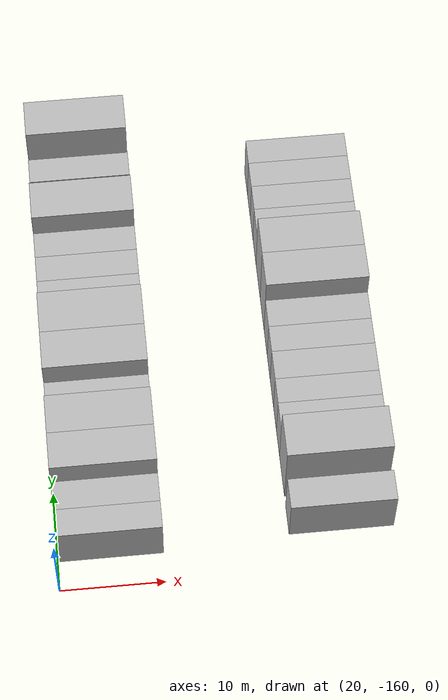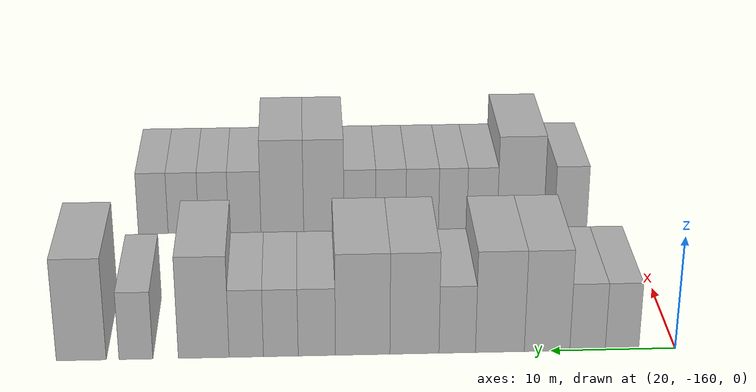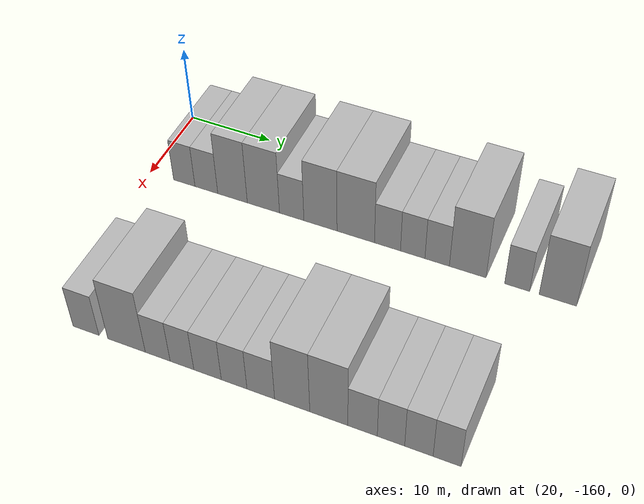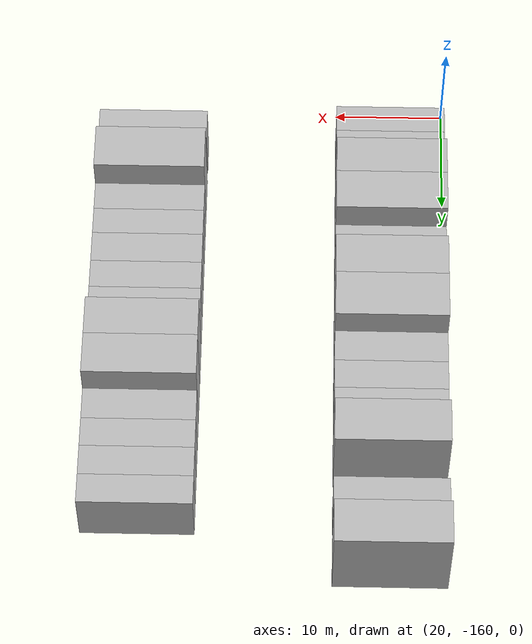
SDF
<sdf version="1.6">
 <world name="default">
  <model name="building_14">
   <static>1</static>
   <pose>25.0000 -155.7029 0 0.000000 0.000000 0.000000</pose>
   <link name="link">
    <pose>0 0 3.00 0 0 0</pose>
    <collision name="collision"><geometry><box><size>10.0000 2.6917 6.0000</size></box></geometry></collision>
    <visual name="visual">
     <cast_shadows>0</cast_shadows>
     <geometry><box><size>10.0000 2.6917 6.0000</size></box></geometry>
     <material>
      <script>
       <uri>model://HANNAS_wall/materials/scripts</uri>
       <uri>model://HANNAS_wall/materials/textures</uri>
       <name>vrc/HANNAS_wall</name>
      </script>
     </material>
    </visual>
   </link>
  </model>
  <model name="building_15">
   <static>1</static>
   <pose>25.0000 -152.9369 0 0.000000 0.000000 0.000000</pose>
   <link name="link">
    <pose>0 0 3.00 0 0 0</pose>
    <collision name="collision"><geometry><box><size>10.0000 2.8404 6.0000</size></box></geometry></collision>
    <visual name="visual">
     <cast_shadows>0</cast_shadows>
     <geometry><box><size>10.0000 2.8404 6.0000</size></box></geometry>
     <material>
      <script>
       <uri>model://HANNAS_wall/materials/scripts</uri>
       <uri>model://HANNAS_wall/materials/textures</uri>
       <name>vrc/HANNAS_wall</name>
      </script>
     </material>
    </visual>
   </link>
  </model>
  <model name="building_16">
   <static>1</static>
   <pose>25.0000 -149.6994 0 0.000000 0.000000 0.000000</pose>
   <link name="link">
    <pose>0 0 4.50 0 0 0</pose>
    <collision name="collision"><geometry><box><size>10.0000 3.6344 9.0000</size></box></geometry></collision>
    <visual name="visual">
     <cast_shadows>0</cast_shadows>
     <geometry><box><size>10.0000 3.6344 9.0000</size></box></geometry>
     <material>
      <script>
       <uri>model://HANNAS_wall/materials/scripts</uri>
       <uri>model://HANNAS_wall/materials/textures</uri>
       <name>vrc/HANNAS_wall</name>
      </script>
     </material>
    </visual>
   </link>
  </model>
  <model name="building_17">
   <static>1</static>
   <pose>25.0000 -145.9331 0 0.000000 0.000000 0.000000</pose>
   <link name="link">
    <pose>0 0 4.50 0 0 0</pose>
    <collision name="collision"><geometry><box><size>10.0000 3.8982 9.0000</size></box></geometry></collision>
    <visual name="visual">
     <cast_shadows>0</cast_shadows>
     <geometry><box><size>10.0000 3.8982 9.0000</size></box></geometry>
     <material>
      <script>
       <uri>model://HANNAS_wall/materials/scripts</uri>
       <uri>model://HANNAS_wall/materials/textures</uri>
       <name>vrc/HANNAS_wall</name>
      </script>
     </material>
    </visual>
   </link>
  </model>
  <model name="building_18">
   <static>1</static>
   <pose>25.0000 -142.5305 0 0.000000 0.000000 0.000000</pose>
   <link name="link">
    <pose>0 0 3.00 0 0 0</pose>
    <collision name="collision"><geometry><box><size>10.0000 2.9070 6.0000</size></box></geometry></collision>
    <visual name="visual">
     <cast_shadows>0</cast_shadows>
     <geometry><box><size>10.0000 2.9070 6.0000</size></box></geometry>
     <material>
      <script>
       <uri>model://HANNAS_wall/materials/scripts</uri>
       <uri>model://HANNAS_wall/materials/textures</uri>
       <name>vrc/HANNAS_wall</name>
      </script>
     </material>
    </visual>
   </link>
  </model>
  <model name="building_19">
   <static>1</static>
   <pose>25.0000 -139.1296 0 0.000000 0.000000 0.000000</pose>
   <link name="link">
    <pose>0 0 4.50 0 0 0</pose>
    <collision name="collision"><geometry><box><size>10.0000 3.8948 9.0000</size></box></geometry></collision>
    <visual name="visual">
     <cast_shadows>0</cast_shadows>
     <geometry><box><size>10.0000 3.8948 9.0000</size></box></geometry>
     <material>
      <script>
       <uri>model://HANNAS_wall/materials/scripts</uri>
       <uri>model://HANNAS_wall/materials/textures</uri>
       <name>vrc/HANNAS_wall</name>
      </script>
     </material>
    </visual>
   </link>
  </model>
  <model name="building_20">
   <static>1</static>
   <pose>25.0000 -135.0204 0 0.000000 0.000000 0.000000</pose>
   <link name="link">
    <pose>0 0 4.50 0 0 0</pose>
    <collision name="collision"><geometry><box><size>10.0000 4.3237 9.0000</size></box></geometry></collision>
    <visual name="visual">
     <cast_shadows>0</cast_shadows>
     <geometry><box><size>10.0000 4.3237 9.0000</size></box></geometry>
     <material>
      <script>
       <uri>model://HANNAS_wall/materials/scripts</uri>
       <uri>model://HANNAS_wall/materials/textures</uri>
       <name>vrc/HANNAS_wall</name>
      </script>
     </material>
    </visual>
   </link>
  </model>
  <model name="building_21">
   <static>1</static>
   <pose>25.0000 -131.3810 0 0.000000 0.000000 0.000000</pose>
   <link name="link">
    <pose>0 0 3.00 0 0 0</pose>
    <collision name="collision"><geometry><box><size>10.0000 2.9551 6.0000</size></box></geometry></collision>
    <visual name="visual">
     <cast_shadows>0</cast_shadows>
     <geometry><box><size>10.0000 2.9551 6.0000</size></box></geometry>
     <material>
      <script>
       <uri>model://HANNAS_wall/materials/scripts</uri>
       <uri>model://HANNAS_wall/materials/textures</uri>
       <name>vrc/HANNAS_wall</name>
      </script>
     </material>
    </visual>
   </link>
  </model>
  <model name="building_22">
   <static>1</static>
   <pose>25.0000 -128.5316 0 0.000000 0.000000 0.000000</pose>
   <link name="link">
    <pose>0 0 3.00 0 0 0</pose>
    <collision name="collision"><geometry><box><size>10.0000 2.7437 6.0000</size></box></geometry></collision>
    <visual name="visual">
     <cast_shadows>0</cast_shadows>
     <geometry><box><size>10.0000 2.7437 6.0000</size></box></geometry>
     <material>
      <script>
       <uri>model://HANNAS_wall/materials/scripts</uri>
       <uri>model://HANNAS_wall/materials/textures</uri>
       <name>vrc/HANNAS_wall</name>
      </script>
     </material>
    </visual>
   </link>
  </model>
  <model name="building_23">
   <static>1</static>
   <pose>25.0000 -125.8042 0 0.000000 0.000000 0.000000</pose>
   <link name="link">
    <pose>0 0 3.00 0 0 0</pose>
    <collision name="collision"><geometry><box><size>10.0000 2.7111 6.0000</size></box></geometry></collision>
    <visual name="visual">
     <cast_shadows>0</cast_shadows>
     <geometry><box><size>10.0000 2.7111 6.0000</size></box></geometry>
     <material>
      <script>
       <uri>model://HANNAS_wall/materials/scripts</uri>
       <uri>model://HANNAS_wall/materials/textures</uri>
       <name>vrc/HANNAS_wall</name>
      </script>
     </material>
    </visual>
   </link>
  </model>
  <model name="building_24">
   <static>1</static>
   <pose>25.0000 -122.4449 0 0.000000 0.000000 0.000000</pose>
   <link name="link">
    <pose>0 0 4.50 0 0 0</pose>
    <collision name="collision"><geometry><box><size>10.0000 4.0074 9.0000</size></box></geometry></collision>
    <visual name="visual">
     <cast_shadows>0</cast_shadows>
     <geometry><box><size>10.0000 4.0074 9.0000</size></box></geometry>
     <material>
      <script>
       <uri>model://HANNAS_wall/materials/scripts</uri>
       <uri>model://HANNAS_wall/materials/textures</uri>
       <name>vrc/HANNAS_wall</name>
      </script>
     </material>
    </visual>
   </link>
  </model>
  <model name="building_25">
   <static>1</static>
   <pose>25.0000 -117.1076 0 0.000000 0.000000 0.000000</pose>
   <link name="link">
    <pose>0 0 3.00 0 0 0</pose>
    <collision name="collision"><geometry><box><size>10.0000 2.6671 6.0000</size></box></geometry></collision>
    <visual name="visual">
     <cast_shadows>0</cast_shadows>
     <geometry><box><size>10.0000 2.6671 6.0000</size></box></geometry>
     <material>
      <script>
       <uri>model://HANNAS_wall/materials/scripts</uri>
       <uri>model://HANNAS_wall/materials/textures</uri>
       <name>vrc/HANNAS_wall</name>
      </script>
     </material>
    </visual>
   </link>
  </model>
  <model name="building_26">
   <static>1</static>
   <pose>25.0000 -112.8133 0 0.000000 0.000000 0.000000</pose>
   <link name="link">
    <pose>0 0 4.50 0 0 0</pose>
    <collision name="collision"><geometry><box><size>10.0000 3.9217 9.0000</size></box></geometry></collision>
    <visual name="visual">
     <cast_shadows>0</cast_shadows>
     <geometry><box><size>10.0000 3.9217 9.0000</size></box></geometry>
     <material>
      <script>
       <uri>model://HANNAS_wall/materials/scripts</uri>
       <uri>model://HANNAS_wall/materials/textures</uri>
       <name>vrc/HANNAS_wall</name>
      </script>
     </material>
    </visual>
   </link>
  </model>
  <model name="building_119">
   <static>1</static>
   <pose>47.0000 -154.7978 0 0.000000 0.000000 0.000000</pose>
   <link name="link">
    <pose>0 0 3.00 0 0 0</pose>
    <collision name="collision"><geometry><box><size>10.0000 2.9771 6.0000</size></box></geometry></collision>
    <visual name="visual">
     <cast_shadows>0</cast_shadows>
     <geometry><box><size>10.0000 2.9771 6.0000</size></box></geometry>
     <material>
      <script>
       <uri>model://HANNAS_wall/materials/scripts</uri>
       <uri>model://HANNAS_wall/materials/textures</uri>
       <name>vrc/HANNAS_wall</name>
      </script>
     </material>
    </visual>
   </link>
  </model>
  <model name="building_120">
   <static>1</static>
   <pose>47.0000 -150.1892 0 0.000000 0.000000 0.000000</pose>
   <link name="link">
    <pose>0 0 4.50 0 0 0</pose>
    <collision name="collision"><geometry><box><size>10.0000 4.2403 9.0000</size></box></geometry></collision>
    <visual name="visual">
     <cast_shadows>0</cast_shadows>
     <geometry><box><size>10.0000 4.2403 9.0000</size></box></geometry>
     <material>
      <script>
       <uri>model://HANNAS_wall/materials/scripts</uri>
       <uri>model://HANNAS_wall/materials/textures</uri>
       <name>vrc/HANNAS_wall</name>
      </script>
     </material>
    </visual>
   </link>
  </model>
  <model name="building_121">
   <static>1</static>
   <pose>47.0000 -146.6948 0 0.000000 0.000000 0.000000</pose>
   <link name="link">
    <pose>0 0 3.00 0 0 0</pose>
    <collision name="collision"><geometry><box><size>10.0000 2.7485 6.0000</size></box></geometry></collision>
    <visual name="visual">
     <cast_shadows>0</cast_shadows>
     <geometry><box><size>10.0000 2.7485 6.0000</size></box></geometry>
     <material>
      <script>
       <uri>model://HANNAS_wall/materials/scripts</uri>
       <uri>model://HANNAS_wall/materials/textures</uri>
       <name>vrc/HANNAS_wall</name>
      </script>
     </material>
    </visual>
   </link>
  </model>
  <model name="building_122">
   <static>1</static>
   <pose>47.0000 -144.0251 0 0.000000 0.000000 0.000000</pose>
   <link name="link">
    <pose>0 0 3.00 0 0 0</pose>
    <collision name="collision"><geometry><box><size>10.0000 2.5907 6.0000</size></box></geometry></collision>
    <visual name="visual">
     <cast_shadows>0</cast_shadows>
     <geometry><box><size>10.0000 2.5907 6.0000</size></box></geometry>
     <material>
      <script>
       <uri>model://HANNAS_wall/materials/scripts</uri>
       <uri>model://HANNAS_wall/materials/textures</uri>
       <name>vrc/HANNAS_wall</name>
      </script>
     </material>
    </visual>
   </link>
  </model>
  <model name="building_123">
   <static>1</static>
   <pose>47.0000 -141.2442 0 0.000000 0.000000 0.000000</pose>
   <link name="link">
    <pose>0 0 3.00 0 0 0</pose>
    <collision name="collision"><geometry><box><size>10.0000 2.9712 6.0000</size></box></geometry></collision>
    <visual name="visual">
     <cast_shadows>0</cast_shadows>
     <geometry><box><size>10.0000 2.9712 6.0000</size></box></geometry>
     <material>
      <script>
       <uri>model://HANNAS_wall/materials/scripts</uri>
       <uri>model://HANNAS_wall/materials/textures</uri>
       <name>vrc/HANNAS_wall</name>
      </script>
     </material>
    </visual>
   </link>
  </model>
  <model name="building_124">
   <static>1</static>
   <pose>47.0000 -138.3931 0 0.000000 0.000000 0.000000</pose>
   <link name="link">
    <pose>0 0 3.00 0 0 0</pose>
    <collision name="collision"><geometry><box><size>10.0000 2.7310 6.0000</size></box></geometry></collision>
    <visual name="visual">
     <cast_shadows>0</cast_shadows>
     <geometry><box><size>10.0000 2.7310 6.0000</size></box></geometry>
     <material>
      <script>
       <uri>model://HANNAS_wall/materials/scripts</uri>
       <uri>model://HANNAS_wall/materials/textures</uri>
       <name>vrc/HANNAS_wall</name>
      </script>
     </material>
    </visual>
   </link>
  </model>
  <model name="building_125">
   <static>1</static>
   <pose>47.0000 -135.5768 0 0.000000 0.000000 0.000000</pose>
   <link name="link">
    <pose>0 0 3.00 0 0 0</pose>
    <collision name="collision"><geometry><box><size>10.0000 2.9015 6.0000</size></box></geometry></collision>
    <visual name="visual">
     <cast_shadows>0</cast_shadows>
     <geometry><box><size>10.0000 2.9015 6.0000</size></box></geometry>
     <material>
      <script>
       <uri>model://HANNAS_wall/materials/scripts</uri>
       <uri>model://HANNAS_wall/materials/textures</uri>
       <name>vrc/HANNAS_wall</name>
      </script>
     </material>
    </visual>
   </link>
  </model>
  <model name="building_126">
   <static>1</static>
   <pose>47.0000 -132.3061 0 0.000000 0.000000 0.000000</pose>
   <link name="link">
    <pose>0 0 4.50 0 0 0</pose>
    <collision name="collision"><geometry><box><size>10.0000 3.6399 9.0000</size></box></geometry></collision>
    <visual name="visual">
     <cast_shadows>0</cast_shadows>
     <geometry><box><size>10.0000 3.6399 9.0000</size></box></geometry>
     <material>
      <script>
       <uri>model://HANNAS_wall/materials/scripts</uri>
       <uri>model://HANNAS_wall/materials/textures</uri>
       <name>vrc/HANNAS_wall</name>
      </script>
     </material>
    </visual>
   </link>
  </model>
  <model name="building_127">
   <static>1</static>
   <pose>47.0000 -128.5535 0 0.000000 0.000000 0.000000</pose>
   <link name="link">
    <pose>0 0 4.50 0 0 0</pose>
    <collision name="collision"><geometry><box><size>10.0000 3.8654 9.0000</size></box></geometry></collision>
    <visual name="visual">
     <cast_shadows>0</cast_shadows>
     <geometry><box><size>10.0000 3.8654 9.0000</size></box></geometry>
     <material>
      <script>
       <uri>model://HANNAS_wall/materials/scripts</uri>
       <uri>model://HANNAS_wall/materials/textures</uri>
       <name>vrc/HANNAS_wall</name>
      </script>
     </material>
    </visual>
   </link>
  </model>
  <model name="building_128">
   <static>1</static>
   <pose>47.0000 -125.1552 0 0.000000 0.000000 0.000000</pose>
   <link name="link">
    <pose>0 0 3.00 0 0 0</pose>
    <collision name="collision"><geometry><box><size>10.0000 2.9312 6.0000</size></box></geometry></collision>
    <visual name="visual">
     <cast_shadows>0</cast_shadows>
     <geometry><box><size>10.0000 2.9312 6.0000</size></box></geometry>
     <material>
      <script>
       <uri>model://HANNAS_wall/materials/scripts</uri>
       <uri>model://HANNAS_wall/materials/textures</uri>
       <name>vrc/HANNAS_wall</name>
      </script>
     </material>
    </visual>
   </link>
  </model>
  <model name="building_129">
   <static>1</static>
   <pose>47.0000 -122.3446 0 0.000000 0.000000 0.000000</pose>
   <link name="link">
    <pose>0 0 3.00 0 0 0</pose>
    <collision name="collision"><geometry><box><size>10.0000 2.6899 6.0000</size></box></geometry></collision>
    <visual name="visual">
     <cast_shadows>0</cast_shadows>
     <geometry><box><size>10.0000 2.6899 6.0000</size></box></geometry>
     <material>
      <script>
       <uri>model://HANNAS_wall/materials/scripts</uri>
       <uri>model://HANNAS_wall/materials/textures</uri>
       <name>vrc/HANNAS_wall</name>
      </script>
     </material>
    </visual>
   </link>
  </model>
  <model name="building_130">
   <static>1</static>
   <pose>47.0000 -119.6209 0 0.000000 0.000000 0.000000</pose>
   <link name="link">
    <pose>0 0 3.00 0 0 0</pose>
    <collision name="collision"><geometry><box><size>10.0000 2.7575 6.0000</size></box></geometry></collision>
    <visual name="visual">
     <cast_shadows>0</cast_shadows>
     <geometry><box><size>10.0000 2.7575 6.0000</size></box></geometry>
     <material>
      <script>
       <uri>model://HANNAS_wall/materials/scripts</uri>
       <uri>model://HANNAS_wall/materials/textures</uri>
       <name>vrc/HANNAS_wall</name>
      </script>
     </material>
    </visual>
   </link>
  </model>
  <model name="building_131">
   <static>1</static>
   <pose>47.0000 -116.9030 0 0.000000 0.000000 0.000000</pose>
   <link name="link">
    <pose>0 0 3.00 0 0 0</pose>
    <collision name="collision"><geometry><box><size>10.0000 2.6785 6.0000</size></box></geometry></collision>
    <visual name="visual">
     <cast_shadows>0</cast_shadows>
     <geometry><box><size>10.0000 2.6785 6.0000</size></box></geometry>
     <material>
      <script>
       <uri>model://HANNAS_wall/materials/scripts</uri>
       <uri>model://HANNAS_wall/materials/textures</uri>
       <name>vrc/HANNAS_wall</name>
      </script>
     </material>
    </visual>
   </link>
  </model>
 </world>
</sdf>
